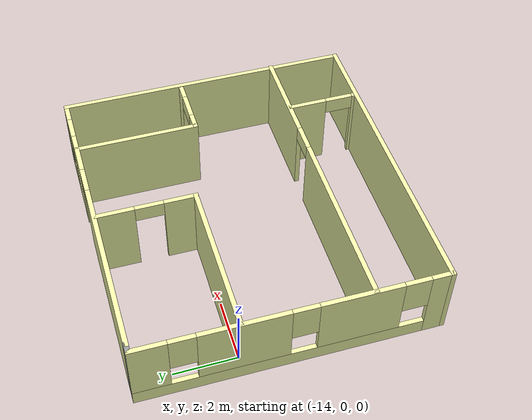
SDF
<?xml version='1.0'?>
<sdf version='1.6'>
  <model name='MyHouse'>
    <pose frame=''>-9.5792 -1.47155 0 0 -0 0</pose>
    <link name='Wall_0'>
      <pose frame=''>0.110625 4.675 0 0 -0 0</pose>
      <visual name='Wall_0_Visual_0'>
        <pose frame=''>-1.95495 0 1.25 0 -0 0</pose>
        <geometry>
          <box>
            <size>5.84009 0.15 2.5</size>
          </box>
        </geometry>
        <material>
          <script>
            <uri>file://media/materials/scripts/gazebo.material</uri>
            <name>Gazebo/Grey</name>
          </script>
          <ambient>0.972549 1 0.670588 1</ambient>
        </material>
        <meta>
          <layer>0</layer>
        </meta>
      </visual>
      <collision name='Wall_0_Collision_0'>
        <geometry>
          <box>
            <size>5.84009 0.15 2.5</size>
          </box>
        </geometry>
        <pose frame=''>-1.95495 0 1.25 0 -0 0</pose>
      </collision>
      <visual name='Wall_0_Visual_1'>
        <pose frame=''>2.62679 0 1.25 0 -0 0</pose>
        <geometry>
          <box>
            <size>1.5234 0.15 2.5</size>
          </box>
        </geometry>
        <material>
          <script>
            <uri>file://media/materials/scripts/gazebo.material</uri>
            <name>Gazebo/Grey</name>
          </script>
          <ambient>0.972549 1 0.670588 1</ambient>
        </material>
        <meta>
          <layer>0</layer>
        </meta>
      </visual>
      <collision name='Wall_0_Collision_1'>
        <geometry>
          <box>
            <size>1.5234 0.15 2.5</size>
          </box>
        </geometry>
        <pose frame=''>2.62679 0 1.25 0 -0 0</pose>
      </collision>
      <visual name='Wall_0_Visual_2'>
        <pose frame=''>4.13175 0 0.25 0 -0 0</pose>
        <geometry>
          <box>
            <size>1.4865 0.15 0.5</size>
          </box>
        </geometry>
        <material>
          <script>
            <uri>file://media/materials/scripts/gazebo.material</uri>
            <name>Gazebo/Grey</name>
          </script>
          <ambient>0.972549 1 0.670588 1</ambient>
        </material>
        <meta>
          <layer>0</layer>
        </meta>
      </visual>
      <collision name='Wall_0_Collision_2'>
        <geometry>
          <box>
            <size>1.4865 0.15 0.5</size>
          </box>
        </geometry>
        <pose frame=''>4.13175 0 0.25 0 -0 0</pose>
      </collision>
      <visual name='Wall_0_Visual_3'>
        <pose frame=''>4.53175 0 1.5 0 -0 0</pose>
        <geometry>
          <box>
            <size>0.686505 0.15 2</size>
          </box>
        </geometry>
        <material>
          <script>
            <uri>file://media/materials/scripts/gazebo.material</uri>
            <name>Gazebo/Grey</name>
          </script>
          <ambient>0.972549 1 0.670588 1</ambient>
        </material>
        <meta>
          <layer>0</layer>
        </meta>
      </visual>
      <collision name='Wall_0_Collision_3'>
        <geometry>
          <box>
            <size>0.686505 0.15 2</size>
          </box>
        </geometry>
        <pose frame=''>4.53175 0 1.5 0 -0 0</pose>
      </collision>
      <visual name='Wall_0_Visual_4'>
        <pose frame=''>3.7885 0 1.9 0 -0 0</pose>
        <geometry>
          <box>
            <size>0.8 0.15 1.2</size>
          </box>
        </geometry>
        <material>
          <script>
            <uri>file://media/materials/scripts/gazebo.material</uri>
            <name>Gazebo/Grey</name>
          </script>
          <ambient>0.972549 1 0.670588 1</ambient>
        </material>
        <meta>
          <layer>0</layer>
        </meta>
      </visual>
      <collision name='Wall_0_Collision_4'>
        <geometry>
          <box>
            <size>0.8 0.15 1.2</size>
          </box>
        </geometry>
        <pose frame=''>3.7885 0 1.9 0 -0 0</pose>
      </collision>
      <visual name='Wall_0_Visual_5'>
        <pose frame=''>1.41509 0 2.25 0 -0 0</pose>
        <geometry>
          <box>
            <size>0.9 0.15 0.5</size>
          </box>
        </geometry>
        <material>
          <script>
            <uri>file://media/materials/scripts/gazebo.material</uri>
            <name>Gazebo/Grey</name>
          </script>
          <ambient>0.972549 1 0.670588 1</ambient>
        </material>
        <meta>
          <layer>0</layer>
        </meta>
      </visual>
      <collision name='Wall_0_Collision_5'>
        <geometry>
          <box>
            <size>0.9 0.15 0.5</size>
          </box>
        </geometry>
        <pose frame=''>1.41509 0 2.25 0 -0 0</pose>
      </collision>
    </link>
    <link name='Wall_1'>
      <collision name='Wall_1_Collision'>
        <geometry>
          <box>
            <size>9.5 0.15 2.5</size>
          </box>
        </geometry>
        <pose frame=''>0 0 1.25 0 -0 0</pose>
      </collision>
      <visual name='Wall_1_Visual'>
        <pose frame=''>0 0 1.25 0 -0 0</pose>
        <geometry>
          <box>
            <size>9.5 0.15 2.5</size>
          </box>
        </geometry>
        <material>
          <script>
            <uri>file://media/materials/scripts/gazebo.material</uri>
            <name>Gazebo/Grey</name>
          </script>
          <ambient>0.972549 1 0.670588 1</ambient>
        </material>
        <meta>
          <layer>0</layer>
        </meta>
      </visual>
      <pose frame=''>4.91062 0 0 0 0 -1.5708</pose>
    </link>
    <link name='Wall_10'>
      <pose frame=''>3.81844 0.825 0 0 -0 0</pose>
      <visual name='Wall_10_Visual_0'>
        <pose frame=''>-0.704774 0 1.25 0 -0 0</pose>
        <geometry>
          <box>
            <size>0.590451 0.15 2.5</size>
          </box>
        </geometry>
        <material>
          <script>
            <uri>file://media/materials/scripts/gazebo.material</uri>
            <name>Gazebo/Grey</name>
          </script>
          <ambient>0.972549 1 0.670588 1</ambient>
        </material>
        <meta>
          <layer>0</layer>
        </meta>
      </visual>
      <collision name='Wall_10_Collision_0'>
        <geometry>
          <box>
            <size>0.590451 0.15 2.5</size>
          </box>
        </geometry>
        <pose frame=''>-0.704774 0 1.25 0 -0 0</pose>
      </collision>
      <visual name='Wall_10_Visual_1'>
        <pose frame=''>0.745226 0 1.25 0 -0 0</pose>
        <geometry>
          <box>
            <size>0.509549 0.15 2.5</size>
          </box>
        </geometry>
        <material>
          <script>
            <uri>file://media/materials/scripts/gazebo.material</uri>
            <name>Gazebo/Grey</name>
          </script>
          <ambient>0.972549 1 0.670588 1</ambient>
        </material>
        <meta>
          <layer>0</layer>
        </meta>
      </visual>
      <collision name='Wall_10_Collision_1'>
        <geometry>
          <box>
            <size>0.509549 0.15 2.5</size>
          </box>
        </geometry>
        <pose frame=''>0.745226 0 1.25 0 -0 0</pose>
      </collision>
      <visual name='Wall_10_Visual_2'>
        <pose frame=''>0.040451 0 2.25 0 -0 0</pose>
        <geometry>
          <box>
            <size>0.9 0.15 0.5</size>
          </box>
        </geometry>
        <material>
          <script>
            <uri>file://media/materials/scripts/gazebo.material</uri>
            <name>Gazebo/Grey</name>
          </script>
          <ambient>0.972549 1 0.670588 1</ambient>
        </material>
        <meta>
          <layer>0</layer>
        </meta>
      </visual>
      <collision name='Wall_10_Collision_2'>
        <geometry>
          <box>
            <size>0.9 0.15 0.5</size>
          </box>
        </geometry>
        <pose frame=''>0.040451 0 2.25 0 -0 0</pose>
      </collision>
    </link>
    <link name='Wall_12'>
      <pose frame=''>0.014376 -2.36475 0 0 -0 0</pose>
      <visual name='Wall_12_Visual_0'>
        <pose frame=''>-2.03973 0 1.25 0 -0 0</pose>
        <geometry>
          <box>
            <size>5.92055 0.15 2.5</size>
          </box>
        </geometry>
        <material>
          <script>
            <uri>file://media/materials/scripts/gazebo.material</uri>
            <name>Gazebo/Grey</name>
          </script>
          <ambient>0.972549 1 0.670588 1</ambient>
        </material>
        <meta>
          <layer>0</layer>
        </meta>
      </visual>
      <collision name='Wall_12_Collision_0'>
        <geometry>
          <box>
            <size>5.92055 0.15 2.5</size>
          </box>
        </geometry>
        <pose frame=''>-2.03973 0 1.25 0 -0 0</pose>
      </collision>
      <visual name='Wall_12_Visual_1'>
        <pose frame=''>3.41027 0 1.25 0 -0 0</pose>
        <geometry>
          <box>
            <size>3.17945 0.15 2.5</size>
          </box>
        </geometry>
        <material>
          <script>
            <uri>file://media/materials/scripts/gazebo.material</uri>
            <name>Gazebo/Grey</name>
          </script>
          <ambient>0.972549 1 0.670588 1</ambient>
        </material>
        <meta>
          <layer>0</layer>
        </meta>
      </visual>
      <collision name='Wall_12_Collision_1'>
        <geometry>
          <box>
            <size>3.17945 0.15 2.5</size>
          </box>
        </geometry>
        <pose frame=''>3.41027 0 1.25 0 -0 0</pose>
      </collision>
      <visual name='Wall_12_Visual_2'>
        <pose frame=''>1.37055 0 2.25 0 -0 0</pose>
        <geometry>
          <box>
            <size>0.9 0.15 0.5</size>
          </box>
        </geometry>
        <material>
          <script>
            <uri>file://media/materials/scripts/gazebo.material</uri>
            <name>Gazebo/Grey</name>
          </script>
          <ambient>0.972549 1 0.670588 1</ambient>
        </material>
        <meta>
          <layer>0</layer>
        </meta>
      </visual>
      <collision name='Wall_12_Collision_2'>
        <geometry>
          <box>
            <size>0.9 0.15 0.5</size>
          </box>
        </geometry>
        <pose frame=''>1.37055 0 2.25 0 -0 0</pose>
      </collision>
    </link>
    <link name='Wall_14'>
      <pose frame=''>2.85322 -3.47509 0 0 0 -1.5708</pose>
      <visual name='Wall_14_Visual_0'>
        <pose frame=''>-0.4979 0 1.25 0 -0 0</pose>
        <geometry>
          <box>
            <size>1.2542 0.15 2.5</size>
          </box>
        </geometry>
        <material>
          <script>
            <uri>file://media/materials/scripts/gazebo.material</uri>
            <name>Gazebo/Grey</name>
          </script>
          <ambient>0.972549 1 0.670588 1</ambient>
        </material>
        <meta>
          <layer>0</layer>
        </meta>
      </visual>
      <collision name='Wall_14_Collision_0'>
        <geometry>
          <box>
            <size>1.2542 0.15 2.5</size>
          </box>
        </geometry>
        <pose frame=''>-0.4979 0 1.25 0 -0 0</pose>
      </collision>
      <visual name='Wall_14_Visual_1'>
        <pose frame=''>1.0771 0 1.25 0 -0 0</pose>
        <geometry>
          <box>
            <size>0.095801 0.15 2.5</size>
          </box>
        </geometry>
        <material>
          <script>
            <uri>file://media/materials/scripts/gazebo.material</uri>
            <name>Gazebo/Grey</name>
          </script>
          <ambient>0.972549 1 0.670588 1</ambient>
        </material>
        <meta>
          <layer>0</layer>
        </meta>
      </visual>
      <collision name='Wall_14_Collision_1'>
        <geometry>
          <box>
            <size>0.095801 0.15 2.5</size>
          </box>
        </geometry>
        <pose frame=''>1.0771 0 1.25 0 -0 0</pose>
      </collision>
      <visual name='Wall_14_Visual_2'>
        <pose frame=''>0.579199 0 2.25 0 -0 0</pose>
        <geometry>
          <box>
            <size>0.9 0.15 0.5</size>
          </box>
        </geometry>
        <material>
          <script>
            <uri>file://media/materials/scripts/gazebo.material</uri>
            <name>Gazebo/Grey</name>
          </script>
          <ambient>0.972549 1 0.670588 1</ambient>
        </material>
        <meta>
          <layer>0</layer>
        </meta>
      </visual>
      <collision name='Wall_14_Collision_2'>
        <geometry>
          <box>
            <size>0.9 0.15 0.5</size>
          </box>
        </geometry>
        <pose frame=''>0.579199 0 2.25 0 -0 0</pose>
      </collision>
    </link>
    <link name='Wall_2'>
      <collision name='Wall_2_Collision'>
        <geometry>
          <box>
            <size>10 0.15 2.5</size>
          </box>
        </geometry>
        <pose frame=''>0 0 1.25 0 -0 0</pose>
      </collision>
      <visual name='Wall_2_Visual'>
        <pose frame=''>0 0 1.25 0 -0 0</pose>
        <geometry>
          <box>
            <size>10 0.15 2.5</size>
          </box>
        </geometry>
        <material>
          <script>
            <uri>file://media/materials/scripts/gazebo.material</uri>
            <name>Gazebo/Grey</name>
          </script>
          <ambient>0.972549 1 0.670588 1</ambient>
        </material>
        <meta>
          <layer>0</layer>
        </meta>
      </visual>
      <pose frame=''>-0.014375 -4.675 0 0 -0 3.14159</pose>
    </link>
    <link name='Wall_3'>
      <pose frame=''>-4.93938 0 0 0 -0 1.5708</pose>
      <visual name='Wall_3_Visual_0'>
        <pose frame=''>-4.39095 0 1.25 0 -0 0</pose>
        <geometry>
          <box>
            <size>0.718095 0.15 2.5</size>
          </box>
        </geometry>
        <material>
          <script>
            <uri>file://media/materials/scripts/gazebo.material</uri>
            <name>Gazebo/Grey</name>
          </script>
          <ambient>0.972549 1 0.670588 1</ambient>
        </material>
        <meta>
          <layer>0</layer>
        </meta>
      </visual>
      <collision name='Wall_3_Collision_0'>
        <geometry>
          <box>
            <size>0.718095 0.15 2.5</size>
          </box>
        </geometry>
        <pose frame=''>-4.39095 0 1.25 0 -0 0</pose>
      </collision>
      <visual name='Wall_3_Visual_1'>
        <pose frame=''>0.359047 0 0.25 0 -0 0</pose>
        <geometry>
          <box>
            <size>8.78191 0.15 0.5</size>
          </box>
        </geometry>
        <material>
          <script>
            <uri>file://media/materials/scripts/gazebo.material</uri>
            <name>Gazebo/Grey</name>
          </script>
          <ambient>0.972549 1 0.670588 1</ambient>
        </material>
        <meta>
          <layer>0</layer>
        </meta>
      </visual>
      <collision name='Wall_3_Collision_1'>
        <geometry>
          <box>
            <size>8.78191 0.15 0.5</size>
          </box>
        </geometry>
        <pose frame=''>0.359047 0 0.25 0 -0 0</pose>
      </collision>
      <visual name='Wall_3_Visual_2'>
        <pose frame=''>-1.97254 0 1.5 0 -0 0</pose>
        <geometry>
          <box>
            <size>2.51874 0.15 2</size>
          </box>
        </geometry>
        <material>
          <script>
            <uri>file://media/materials/scripts/gazebo.material</uri>
            <name>Gazebo/Grey</name>
          </script>
          <ambient>0.972549 1 0.670588 1</ambient>
        </material>
        <meta>
          <layer>0</layer>
        </meta>
      </visual>
      <collision name='Wall_3_Collision_2'>
        <geometry>
          <box>
            <size>2.51874 0.15 2</size>
          </box>
        </geometry>
        <pose frame=''>-1.97254 0 1.5 0 -0 0</pose>
      </collision>
      <visual name='Wall_3_Visual_3'>
        <pose frame=''>1.44677 0 1.5 0 -0 0</pose>
        <geometry>
          <box>
            <size>2.71988 0.15 2</size>
          </box>
        </geometry>
        <material>
          <script>
            <uri>file://media/materials/scripts/gazebo.material</uri>
            <name>Gazebo/Grey</name>
          </script>
          <ambient>0.972549 1 0.670588 1</ambient>
        </material>
        <meta>
          <layer>0</layer>
        </meta>
      </visual>
      <collision name='Wall_3_Collision_3'>
        <geometry>
          <box>
            <size>2.71988 0.15 2</size>
          </box>
        </geometry>
        <pose frame=''>1.44677 0 1.5 0 -0 0</pose>
      </collision>
      <visual name='Wall_3_Visual_4'>
        <pose frame=''>4.17835 0 1.5 0 -0 0</pose>
        <geometry>
          <box>
            <size>1.14329 0.15 2</size>
          </box>
        </geometry>
        <material>
          <script>
            <uri>file://media/materials/scripts/gazebo.material</uri>
            <name>Gazebo/Grey</name>
          </script>
          <ambient>0.972549 1 0.670588 1</ambient>
        </material>
        <meta>
          <layer>0</layer>
        </meta>
      </visual>
      <collision name='Wall_3_Collision_4'>
        <geometry>
          <box>
            <size>1.14329 0.15 2</size>
          </box>
        </geometry>
        <pose frame=''>4.17835 0 1.5 0 -0 0</pose>
      </collision>
      <visual name='Wall_3_Visual_5'>
        <pose frame=''>-3.63191 0 1.9 0 -0 0</pose>
        <geometry>
          <box>
            <size>0.8 0.15 1.2</size>
          </box>
        </geometry>
        <material>
          <script>
            <uri>file://media/materials/scripts/gazebo.material</uri>
            <name>Gazebo/Grey</name>
          </script>
          <ambient>0.972549 1 0.670588 1</ambient>
        </material>
        <meta>
          <layer>0</layer>
        </meta>
      </visual>
      <collision name='Wall_3_Collision_5'>
        <geometry>
          <box>
            <size>0.8 0.15 1.2</size>
          </box>
        </geometry>
        <pose frame=''>-3.63191 0 1.9 0 -0 0</pose>
      </collision>
      <visual name='Wall_3_Visual_6'>
        <pose frame=''>-0.313166 0 1.9 0 -0 0</pose>
        <geometry>
          <box>
            <size>0.8 0.15 1.2</size>
          </box>
        </geometry>
        <material>
          <script>
            <uri>file://media/materials/scripts/gazebo.material</uri>
            <name>Gazebo/Grey</name>
          </script>
          <ambient>0.972549 1 0.670588 1</ambient>
        </material>
        <meta>
          <layer>0</layer>
        </meta>
      </visual>
      <collision name='Wall_3_Collision_6'>
        <geometry>
          <box>
            <size>0.8 0.15 1.2</size>
          </box>
        </geometry>
        <pose frame=''>-0.313166 0 1.9 0 -0 0</pose>
      </collision>
      <visual name='Wall_3_Visual_7'>
        <pose frame=''>3.20671 0 1.9 0 -0 0</pose>
        <geometry>
          <box>
            <size>0.8 0.15 1.2</size>
          </box>
        </geometry>
        <material>
          <script>
            <uri>file://media/materials/scripts/gazebo.material</uri>
            <name>Gazebo/Grey</name>
          </script>
          <ambient>0.972549 1 0.670588 1</ambient>
        </material>
        <meta>
          <layer>0</layer>
        </meta>
      </visual>
      <collision name='Wall_3_Collision_7'>
        <geometry>
          <box>
            <size>0.8 0.15 1.2</size>
          </box>
        </geometry>
        <pose frame=''>3.20671 0 1.9 0 -0 0</pose>
      </collision>
    </link>
    <link name='Wall_4'>
      <collision name='Wall_4_Collision'>
        <geometry>
          <box>
            <size>0.4 0.15 2.5</size>
          </box>
        </geometry>
        <pose frame=''>0 0 1.25 0 -0 0</pose>
      </collision>
      <visual name='Wall_4_Visual'>
        <pose frame=''>0 0 1.25 0 -0 0</pose>
        <geometry>
          <box>
            <size>0.4 0.15 2.5</size>
          </box>
        </geometry>
        <material>
          <script>
            <uri>file://media/materials/scripts/gazebo.material</uri>
            <name>Gazebo/Grey</name>
          </script>
          <ambient>1 1 1 1</ambient>
        </material>
        <meta>
          <layer>0</layer>
        </meta>
      </visual>
      <pose frame=''>-4.81438 4.675 0 0 -0 0</pose>
    </link>
    <link name='Wall_6'>
      <pose frame=''>-0.043139 3.10489 0 0 0 -1.5708</pose>
      <visual name='Wall_6_Visual_0'>
        <pose frame=''>-0.987844 0 1.25 0 -0 0</pose>
        <geometry>
          <box>
            <size>1.27431 0.15 2.5</size>
          </box>
        </geometry>
        <material>
          <script>
            <uri>file://media/materials/scripts/gazebo.material</uri>
            <name>Gazebo/Grey</name>
          </script>
          <ambient>0.972549 1 0.670588 1</ambient>
        </material>
        <meta>
          <layer>0</layer>
        </meta>
      </visual>
      <collision name='Wall_6_Collision_0'>
        <geometry>
          <box>
            <size>1.27431 0.15 2.5</size>
          </box>
        </geometry>
        <pose frame=''>-0.987844 0 1.25 0 -0 0</pose>
      </collision>
      <visual name='Wall_6_Visual_1'>
        <pose frame=''>1.08716 0 1.25 0 -0 0</pose>
        <geometry>
          <box>
            <size>1.07569 0.15 2.5</size>
          </box>
        </geometry>
        <material>
          <script>
            <uri>file://media/materials/scripts/gazebo.material</uri>
            <name>Gazebo/Grey</name>
          </script>
          <ambient>0.972549 1 0.670588 1</ambient>
        </material>
        <meta>
          <layer>0</layer>
        </meta>
      </visual>
      <collision name='Wall_6_Collision_1'>
        <geometry>
          <box>
            <size>1.07569 0.15 2.5</size>
          </box>
        </geometry>
        <pose frame=''>1.08716 0 1.25 0 -0 0</pose>
      </collision>
      <visual name='Wall_6_Visual_2'>
        <pose frame=''>0.099313 0 2.25 0 -0 0</pose>
        <geometry>
          <box>
            <size>0.9 0.15 0.5</size>
          </box>
        </geometry>
        <material>
          <script>
            <uri>file://media/materials/scripts/gazebo.material</uri>
            <name>Gazebo/Grey</name>
          </script>
          <ambient>0.972549 1 0.670588 1</ambient>
        </material>
        <meta>
          <layer>0</layer>
        </meta>
      </visual>
      <collision name='Wall_6_Collision_2'>
        <geometry>
          <box>
            <size>0.9 0.15 0.5</size>
          </box>
        </geometry>
        <pose frame=''>0.099313 0 2.25 0 -0 0</pose>
      </collision>
    </link>
    <link name='Wall_7'>
      <collision name='Wall_7_Collision'>
        <geometry>
          <box>
            <size>5 0.15 2.5</size>
          </box>
        </geometry>
        <pose frame=''>0 0 1.25 0 -0 0</pose>
      </collision>
      <visual name='Wall_7_Visual'>
        <pose frame=''>0 0 1.25 0 -0 0</pose>
        <geometry>
          <box>
            <size>5 0.15 2.5</size>
          </box>
        </geometry>
        <material>
          <script>
            <uri>file://media/materials/scripts/gazebo.material</uri>
            <name>Gazebo/Grey</name>
          </script>
          <ambient>0.972549 1 0.670588 1</ambient>
        </material>
        <meta>
          <layer>0</layer>
        </meta>
      </visual>
      <pose frame=''>-2.46814 1.55489 0 0 -0 3.14159</pose>
    </link>
    <link name='Wall_9'>
      <collision name='Wall_9_Collision'>
        <geometry>
          <box>
            <size>4 0.15 2.5</size>
          </box>
        </geometry>
        <pose frame=''>0 0 1.25 0 -0 0</pose>
      </collision>
      <visual name='Wall_9_Visual'>
        <pose frame=''>0 0 1.25 0 -0 0</pose>
        <geometry>
          <box>
            <size>4 0.15 2.5</size>
          </box>
        </geometry>
        <material>
          <script>
            <uri>file://media/materials/scripts/gazebo.material</uri>
            <name>Gazebo/Grey</name>
          </script>
          <ambient>0.972549 1 0.670588 1</ambient>
        </material>
        <meta>
          <layer>0</layer>
        </meta>
      </visual>
      <pose frame=''>2.89344 2.75 0 0 0 -1.5708</pose>
    </link>
    <static>1</static>
  </model>
</sdf>
